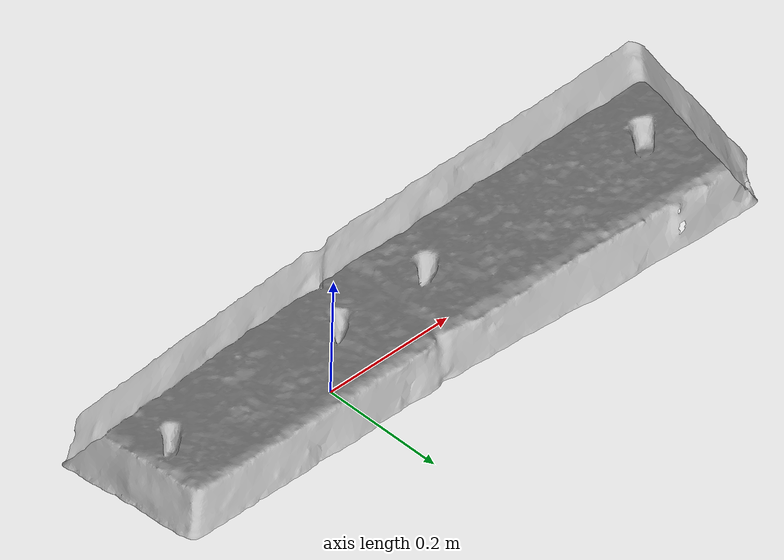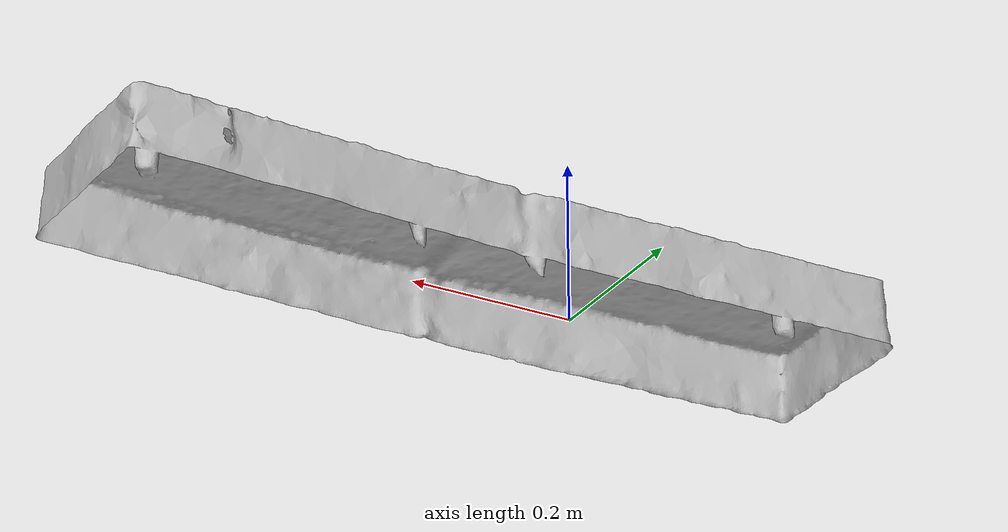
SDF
<?xml version='1.0'?>

<sdf version='1.7'>
   <model name="collision_block">
      <static>true</static>
      <link name="collision_block">
         <pose>0 0 0 1.57 0 3.1415</pose>
         <collision name="collision_block_collision">
            <pose>0 0 0 0 0 0</pose>
            <geometry>
               <mesh>
                  <uri>model://collision_block/meshes/collision_block.obj</uri>
                  <scale>1 1 1</scale>
               </mesh>
            </geometry>
            <surface>
               <friction>
                  <ode>
                     <mu>1.5</mu>  <!-- 岩石动摩擦力范围 1.2~1.8 -->
                     <mu2>1.0</mu2> <!-- 岩石静摩擦力范围 0.8~1.2 -->
                  </ode>
               </friction>
            </surface>
         </collision>
         <visual name="collision_block_visual">
            <pose>0 0 0 0 0 0</pose>
            <cast_shadows>false</cast_shadows>
            <geometry>
               <mesh>
                  <uri>model://collision_block/meshes/collision_block.obj</uri>
                  <scale>1 1 1</scale>
               </mesh>
            </geometry>
         </visual>
      </link>
   </model>
</sdf>
